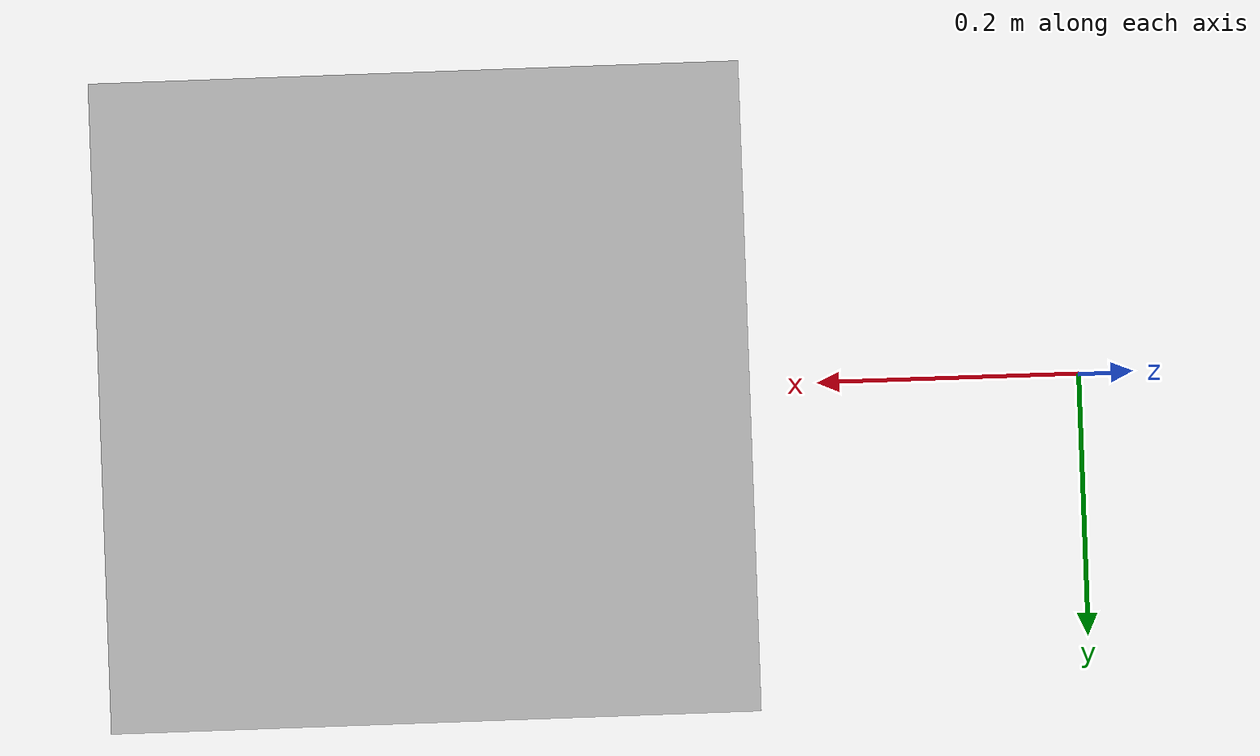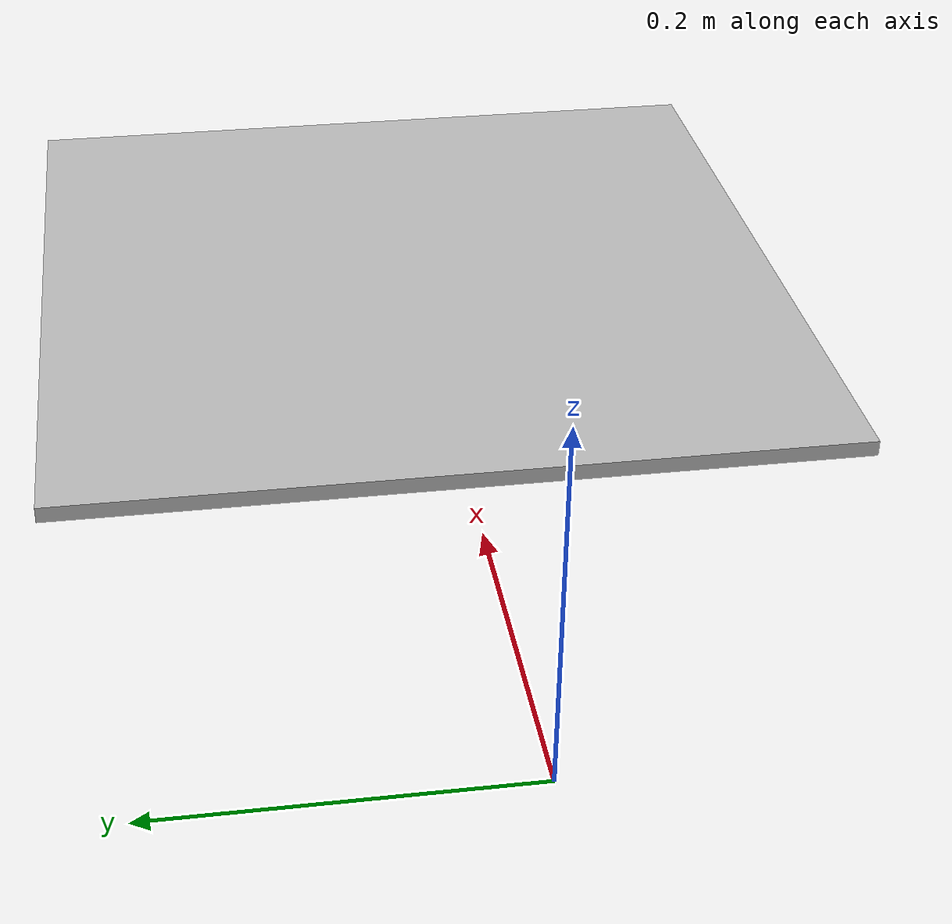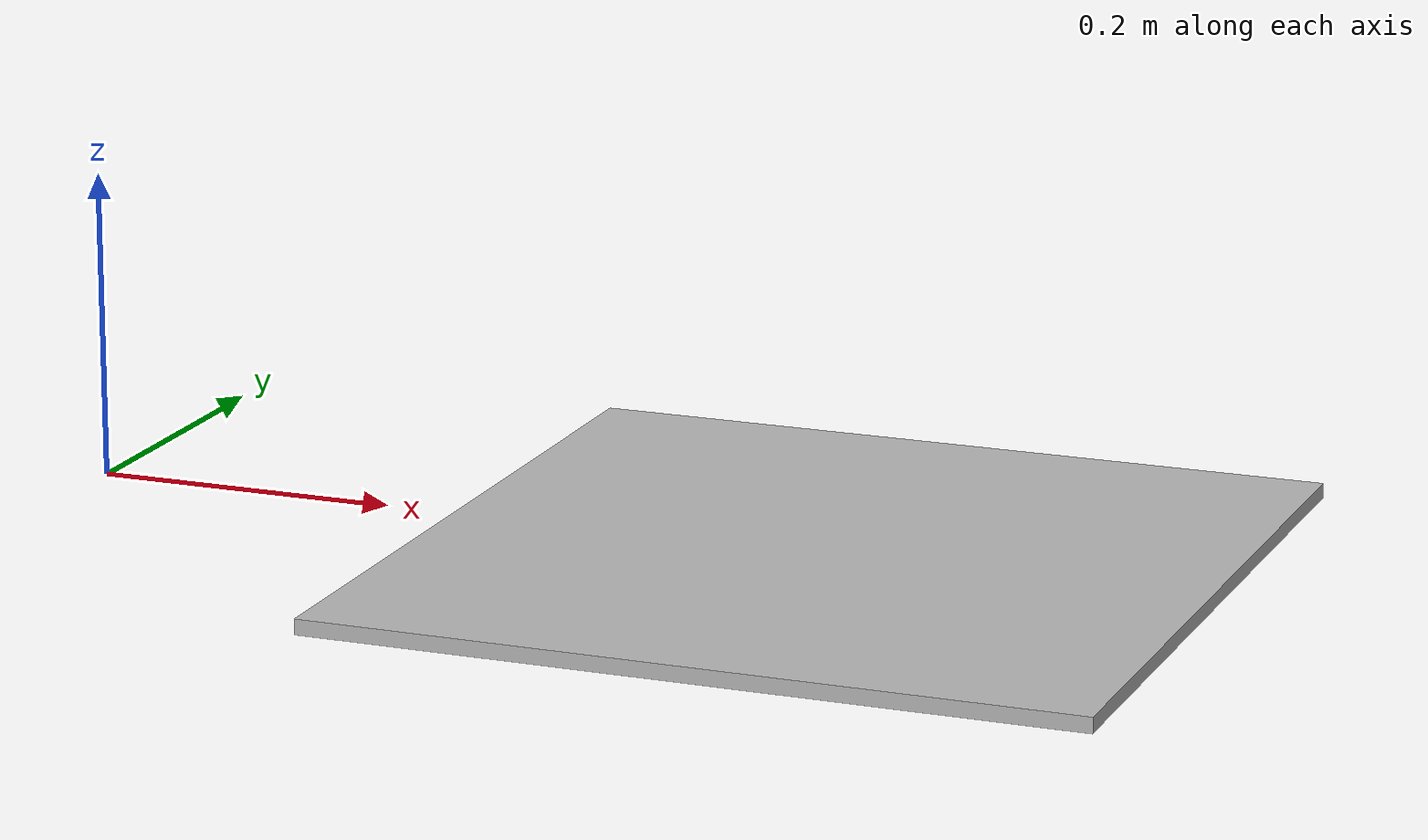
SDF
<?xml version='1.0'?>
<sdf version='1.4'>
  <model name="land_mark">
    <link name='link'>
      <pose>0.5 0 0 0 0 0</pose>
      <inertial>
        <mass>0.390</mass>
        <inertia>
          <ixx>0.00058</ixx>
          <ixy>0</ixy>
          <ixz>0</ixz>
          <iyy>0.00058</iyy>
          <iyz>0</iyz>
          <izz>0.00019</izz>
        </inertia>
      </inertial>
      <collision name='collision'>
        <geometry>
                <box>
                  <size>.496 .496 .01</size>
                </box>
        </geometry>
      </collision>

      <visual name='visual'>
        <geometry>
                <box>
                  <size>.496 .496 .01</size>
                </box>
        </geometry>

        <material>
          <script>
            <uri>model://land_mark/materials/scripts</uri>
            <uri>model://land_mark/materials/textures</uri>
            <name>Mark/Diffuse</name>
          </script>
        </material>
      </visual>
    </link>
  </model>
</sdf>
